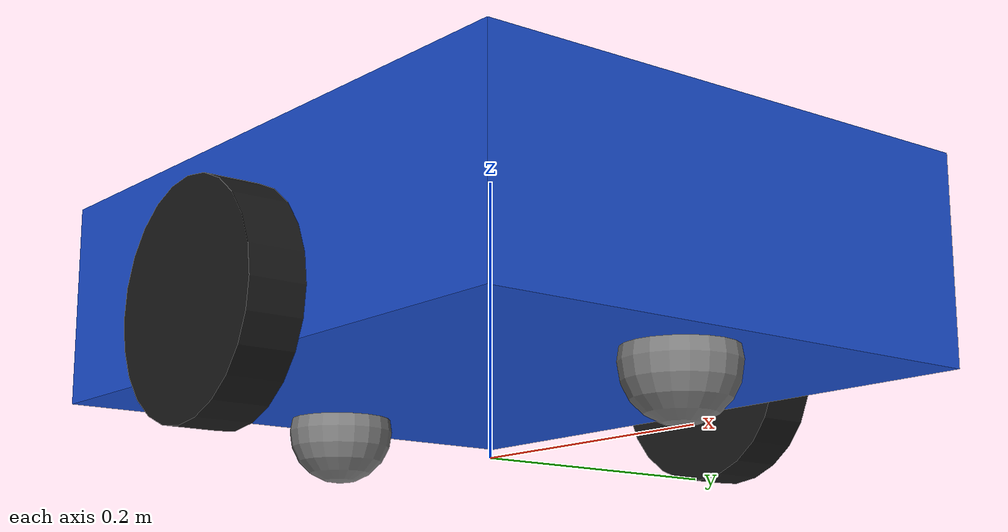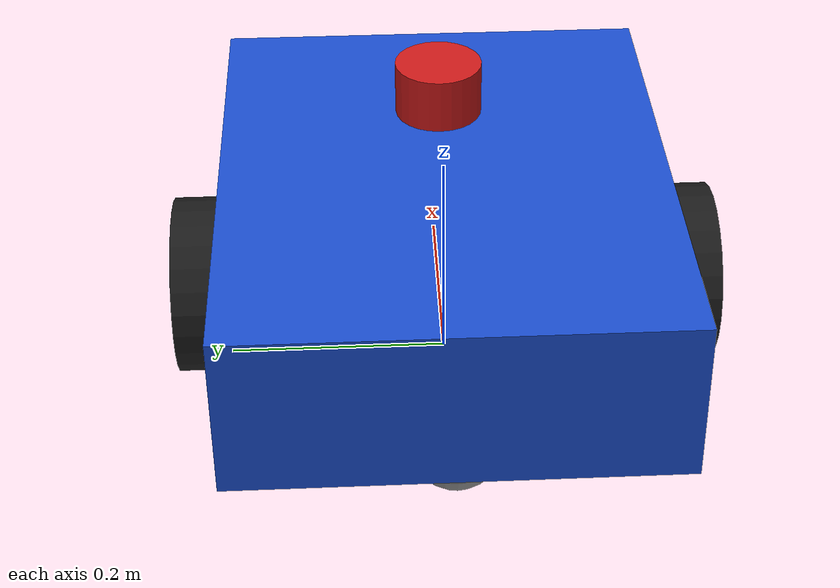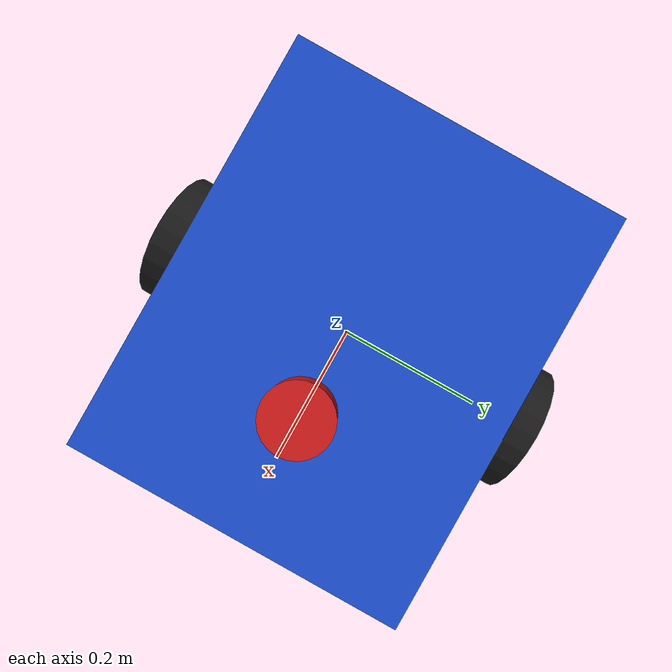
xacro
<?xml version="1.0"?>
<robot name="amr" xmlns:xacro="http://www.ros.org/wiki/xacro">

  <xacro:arg name="ns" default="r1"/>
  <xacro:arg name="lidar" default="true"/>
  <xacro:arg name="color" default="0.1 0.3 0.8 1"/>
  <xacro:property name="ns" value="$(arg ns)"/>

  <xacro:property name="base_length" value="0.50"/>
  <xacro:property name="base_width"  value="0.40"/>
  <xacro:property name="base_height" value="0.15"/>
  <xacro:property name="base_mass"   value="15.0"/>
  <xacro:property name="wheel_radius" value="0.08"/>
  <xacro:property name="wheel_width"  value="0.04"/>
  <xacro:property name="wheel_mass"   value="1.0"/>
  <xacro:property name="wheel_separation" value="${base_width + wheel_width + 0.01}"/>
  <xacro:property name="caster_radius" value="0.04"/>
  <xacro:property name="caster_z" value="${caster_radius - wheel_radius}"/>

  <xacro:macro name="box_inertia" params="m x y z">
    <inertial>
      <mass value="${m}"/>
      <inertia ixx="${m*(y*y+z*z)/12}" ixy="0" ixz="0" iyy="${m*(x*x+z*z)/12}" iyz="0" izz="${m*(x*x+y*y)/12}"/>
    </inertial>
  </xacro:macro>
  <xacro:macro name="cylinder_inertia" params="m r h">
    <inertial>
      <mass value="${m}"/>
      <inertia ixx="${m*(3*r*r+h*h)/12}" ixy="0" ixz="0" iyy="${m*(3*r*r+h*h)/12}" iyz="0" izz="${m*r*r/2}"/>
    </inertial>
  </xacro:macro>
  <xacro:macro name="sphere_inertia" params="m r">
    <inertial>
      <mass value="${m}"/>
      <inertia ixx="${2*m*r*r/5}" ixy="0" ixz="0" iyy="${2*m*r*r/5}" iyz="0" izz="${2*m*r*r/5}"/>
    </inertial>
  </xacro:macro>

  <link name="base_footprint"/>

  <link name="base_link">
    <visual>
      <origin xyz="0 0 ${base_height/2 - 0.03}"/>
      <geometry><box size="${base_length} ${base_width} ${base_height}"/></geometry>
      <material name="body_${ns}"><color rgba="$(arg color)"/></material>
    </visual>
    <collision>
      <origin xyz="0 0 ${base_height/2 - 0.03}"/>
      <geometry><box size="${base_length} ${base_width} ${base_height}"/></geometry>
    </collision>
    <xacro:box_inertia m="${base_mass}" x="${base_length}" y="${base_width}" z="${base_height}"/>
  </link>

  <joint name="base_footprint_joint" type="fixed">
    <parent link="base_footprint"/>
    <child link="base_link"/>
    <origin xyz="0 0 ${wheel_radius}"/>
  </joint>

  <xacro:macro name="wheel" params="prefix y_reflect">
    <link name="${prefix}_wheel_link">
      <visual>
        <geometry><cylinder radius="${wheel_radius}" length="${wheel_width}"/></geometry>
        <material name="black"><color rgba="0.1 0.1 0.1 1"/></material>
      </visual>
      <collision>
        <geometry><cylinder radius="${wheel_radius}" length="${wheel_width}"/></geometry>
      </collision>
      <xacro:cylinder_inertia m="${wheel_mass}" r="${wheel_radius}" h="${wheel_width}"/>
    </link>
    <joint name="${prefix}_wheel_joint" type="continuous">
      <parent link="base_link"/>
      <child link="${prefix}_wheel_link"/>
      <origin xyz="0 ${y_reflect*wheel_separation/2} 0" rpy="${-pi/2} 0 0"/>
      <axis xyz="0 0 1"/>
    </joint>
    <gazebo reference="${prefix}_wheel_link">
      <mu1>1.0</mu1>
      <mu2>1.0</mu2>
    </gazebo>
  </xacro:macro>
  <xacro:wheel prefix="left"  y_reflect="1"/>
  <xacro:wheel prefix="right" y_reflect="-1"/>

  <xacro:macro name="caster" params="prefix x">
    <link name="${prefix}_caster_link">
      <visual>
        <geometry><sphere radius="${caster_radius}"/></geometry>
        <material name="grey"><color rgba="0.5 0.5 0.5 1"/></material>
      </visual>
      <collision>
        <geometry><sphere radius="${caster_radius}"/></geometry>
      </collision>
      <xacro:sphere_inertia m="0.2" r="${caster_radius}"/>
    </link>
    <joint name="${prefix}_caster_joint" type="fixed">
      <parent link="base_link"/>
      <child link="${prefix}_caster_link"/>
      <origin xyz="${x} 0 ${caster_z}"/>
    </joint>
    <gazebo reference="${prefix}_caster_link">
      <mu1>0.0</mu1>
      <mu2>0.0</mu2>
    </gazebo>
  </xacro:macro>
  <xacro:caster prefix="front" x="${base_length/2 - caster_radius - 0.02}"/>
  <xacro:caster prefix="rear"  x="${-(base_length/2 - caster_radius - 0.02)}"/>

  <gazebo>
    <plugin filename="gz-sim-diff-drive-system" name="gz::sim::systems::DiffDrive">
      <left_joint>left_wheel_joint</left_joint>
      <right_joint>right_wheel_joint</right_joint>
      <wheel_separation>${wheel_separation}</wheel_separation>
      <wheel_radius>${wheel_radius}</wheel_radius>
      <max_linear_acceleration>1.0</max_linear_acceleration>
      <max_angular_acceleration>2.0</max_angular_acceleration>
      <topic>/${ns}/cmd_vel</topic>
      <odom_topic>/${ns}/odom</odom_topic>
      <tf_topic>/${ns}/tf</tf_topic>
      <frame_id>${ns}/odom</frame_id>
      <child_frame_id>${ns}/base_footprint</child_frame_id>
      <odom_publish_frequency>50</odom_publish_frequency>
    </plugin>
    <!-- wheel angles for robot_state_publisher, so RViz can draw the full model -->
    <plugin filename="gz-sim-joint-state-publisher-system" name="gz::sim::systems::JointStatePublisher">
      <topic>/${ns}/joint_states</topic>
      <joint_name>left_wheel_joint</joint_name>
      <joint_name>right_wheel_joint</joint_name>
    </plugin>
  </gazebo>

  <xacro:if value="$(arg lidar)">
    <link name="lidar_link">
      <visual>
        <geometry><cylinder radius="0.04" length="0.05"/></geometry>
        <material name="red"><color rgba="0.8 0.1 0.1 1"/></material>
      </visual>
      <collision>
        <geometry><cylinder radius="0.04" length="0.05"/></geometry>
      </collision>
      <xacro:cylinder_inertia m="0.1" r="0.04" h="0.05"/>
    </link>
    <joint name="lidar_joint" type="fixed">
      <parent link="base_link"/>
      <child link="lidar_link"/>
      <origin xyz="0.1 0 ${base_height - 0.03 + 0.025}"/>
    </joint>
    <gazebo reference="lidar_link">
      <sensor name="lidar" type="gpu_lidar">
        <topic>/${ns}/scan</topic>
        <gz_frame_id>${ns}/lidar_link</gz_frame_id>
        <update_rate>10</update_rate>
        <always_on>true</always_on>
        <visualize>true</visualize>
        <lidar>
          <scan>
            <horizontal>
              <samples>720</samples>
              <resolution>1</resolution>
              <min_angle>-3.14159</min_angle>
              <max_angle>3.14159</max_angle>
            </horizontal>
          </scan>
          <range>
            <min>0.12</min>
            <max>12.0</max>
            <resolution>0.01</resolution>
          </range>
          <noise>
            <type>gaussian</type>
            <mean>0.0</mean>
            <stddev>0.01</stddev>
          </noise>
        </lidar>
      </sensor>
    </gazebo>
  </xacro:if>

</robot>
